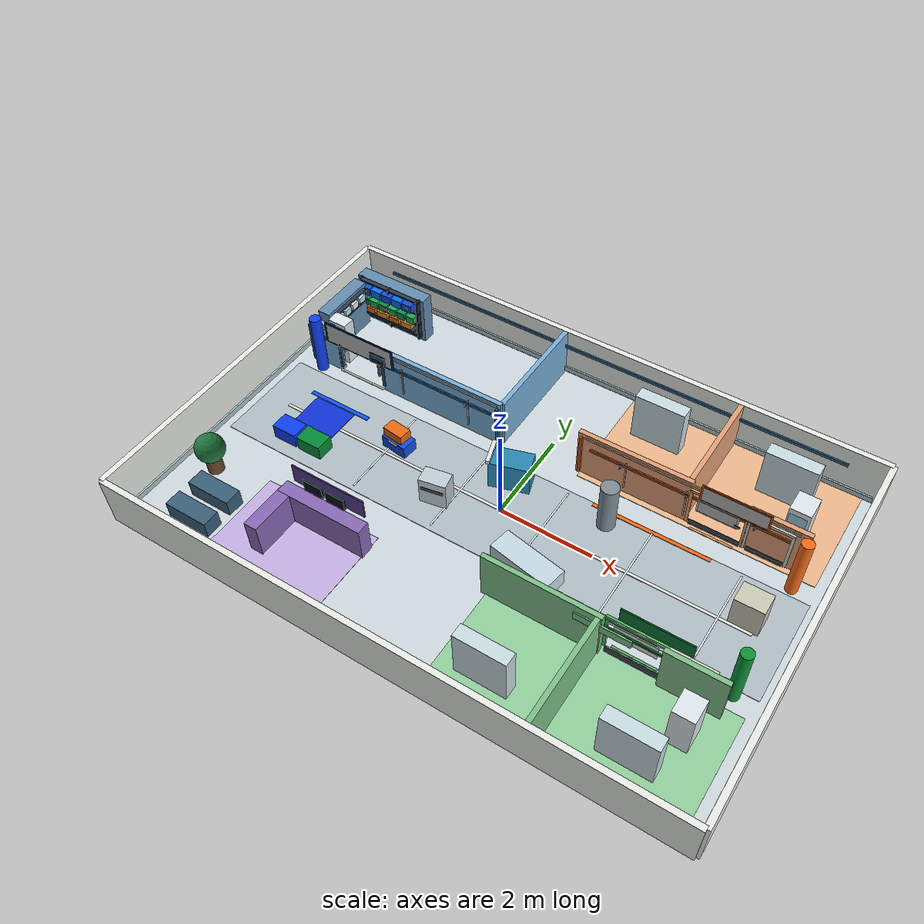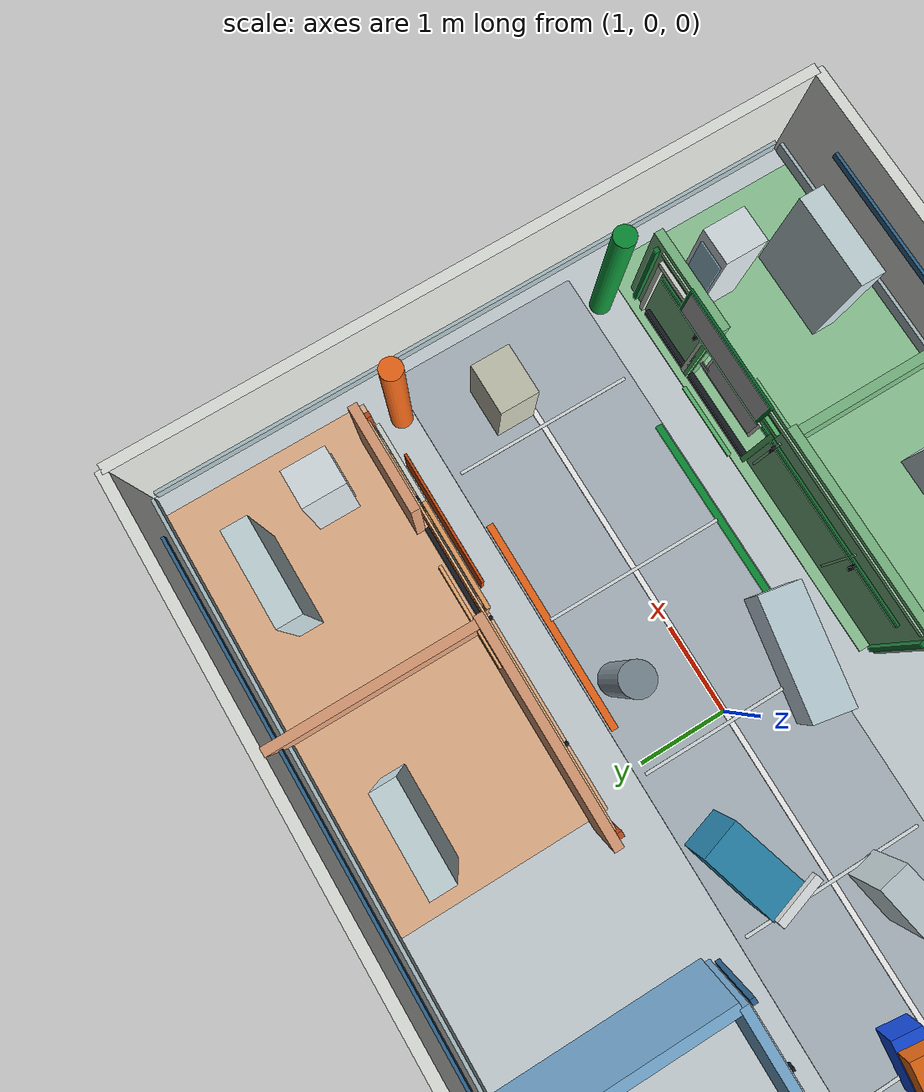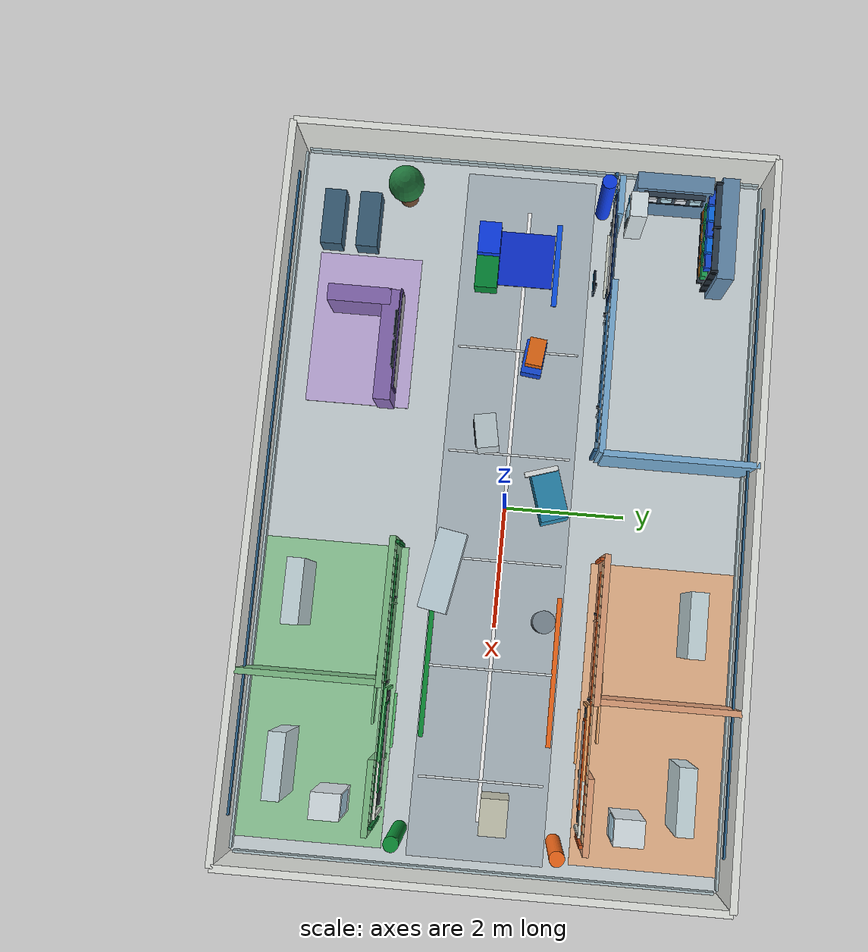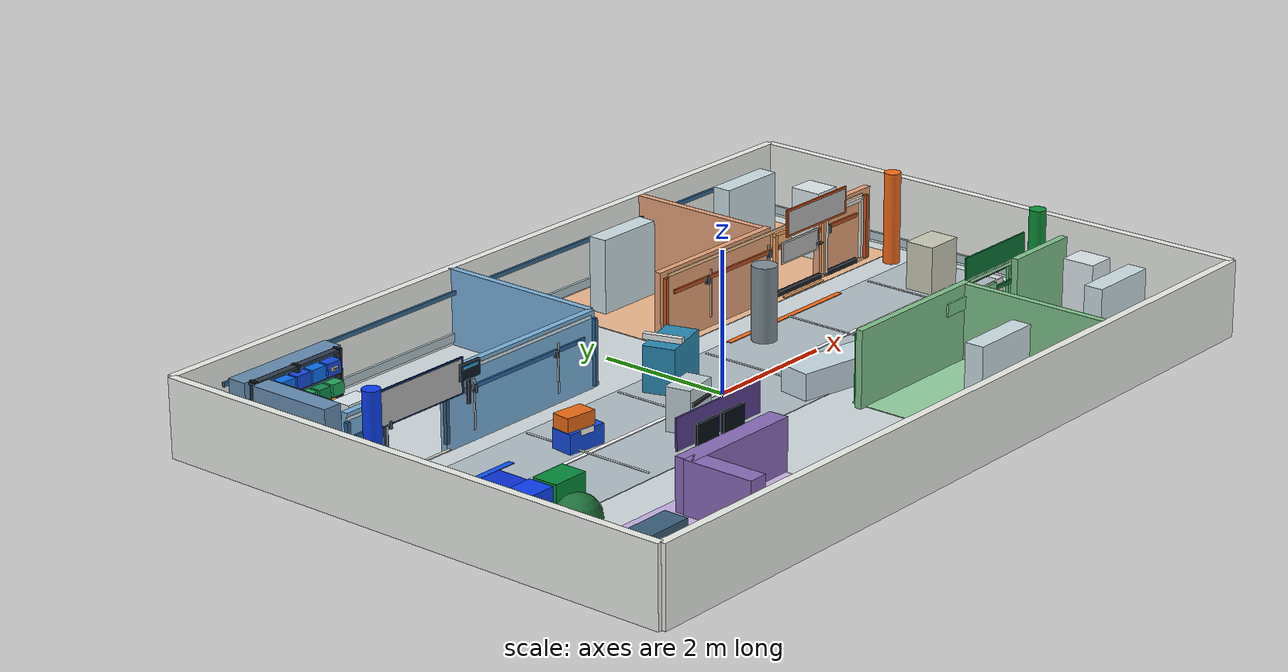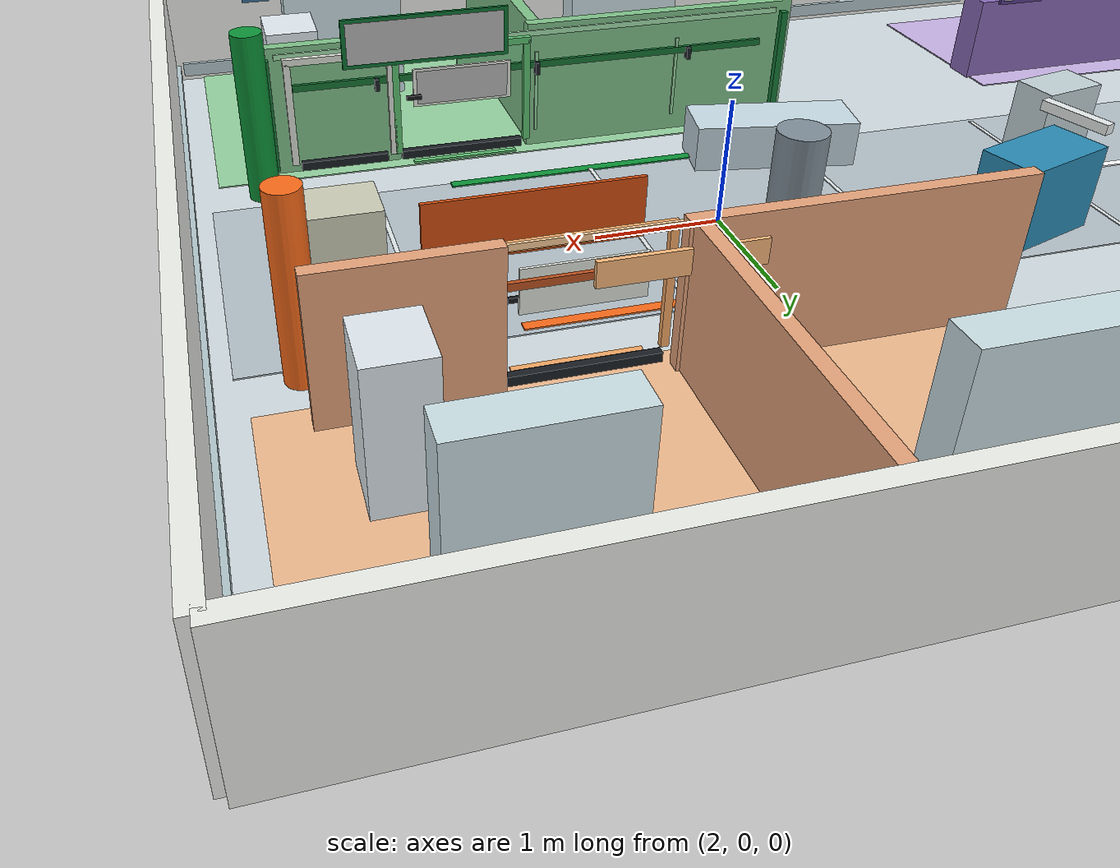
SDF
<?xml version="1.0" ?>
<sdf version="1.6">
  <world name="mobile_delivery">
    <include>
      <uri>model://sun</uri>
    </include>

    <scene>
      <ambient>0.68 0.71 0.72 1</ambient>
      <background>0.80 0.85 0.88 1</background>
      <shadows>true</shadows>
    </scene>

    <gui fullscreen='0'>
      <camera name='user_camera'>
        <pose>-2.9 4.8 3.2 0 0.85 -2.1</pose>
        <view_controller>orbit</view_controller>
        <projection_type>perspective</projection_type>
      </camera>
    </gui>

    <light name="corridor_softbox_1" type="point">
      <pose>-3.0 0 1.35 0 0 0</pose>
      <diffuse>0.95 0.96 0.90 1</diffuse>
      <specular>0.18 0.18 0.16 1</specular>
      <attenuation>
        <range>5.0</range>
        <constant>0.7</constant>
        <linear>0.08</linear>
        <quadratic>0.02</quadratic>
      </attenuation>
    </light>

    <light name="corridor_softbox_2" type="point">
      <pose>0.5 0 1.35 0 0 0</pose>
      <diffuse>0.95 0.96 0.90 1</diffuse>
      <specular>0.18 0.18 0.16 1</specular>
      <attenuation>
        <range>5.0</range>
        <constant>0.7</constant>
        <linear>0.08</linear>
        <quadratic>0.02</quadratic>
      </attenuation>
    </light>

    <light name="corridor_softbox_3" type="point">
      <pose>3.6 0 1.35 0 0 0</pose>
      <diffuse>0.95 0.96 0.90 1</diffuse>
      <specular>0.18 0.18 0.16 1</specular>
      <attenuation>
        <range>5.0</range>
        <constant>0.7</constant>
        <linear>0.08</linear>
        <quadratic>0.02</quadratic>
      </attenuation>
    </light>

    <physics type="ode">
      <real_time_update_rate>1000.0</real_time_update_rate>
      <max_step_size>0.001</max_step_size>
      <real_time_factor>1.0</real_time_factor>
    </physics>

    <model name="floor_plan">
      <static>true</static>
      <link name="base_floor">
        <collision name="collision">
          <geometry><box><size>12.0 8.0 0.02</size></box></geometry>
        </collision>
        <visual name="visual">
          <geometry><box><size>12.0 8.0 0.02</size></box></geometry>
          <material>
            <ambient>0.82 0.86 0.88 1</ambient>
            <diffuse>0.82 0.86 0.88 1</diffuse>
          </material>
        </visual>
      </link>

      <link name="main_corridor_floor">
        <pose>0 0 0.016 0 0 0</pose>
        <visual name="visual">
          <geometry><box><size>11.55 2.22 0.01</size></box></geometry>
          <material>
            <ambient>0.70 0.75 0.78 1</ambient>
            <diffuse>0.70 0.75 0.78 1</diffuse>
          </material>
        </visual>
      </link>

      <link name="wing_a_med_room_floor">
        <pose>3.25 2.75 0.018 0 0 0</pose>
        <visual name="visual">
          <geometry><box><size>4.9 2.45 0.01</size></box></geometry>
          <material>
            <ambient>0.94 0.73 0.56 1</ambient>
            <diffuse>0.94 0.73 0.56 1</diffuse>
          </material>
        </visual>
      </link>

      <link name="wing_b_med_room_floor">
        <pose>3.25 -2.75 0.018 0 0 0</pose>
        <visual name="visual">
          <geometry><box><size>4.9 2.45 0.01</size></box></geometry>
          <material>
            <ambient>0.58 0.82 0.62 1</ambient>
            <diffuse>0.58 0.82 0.62 1</diffuse>
          </material>
        </visual>
      </link>

      <link name="nurse_station_zone_floor">
        <pose>-2.85 -2.65 0.018 0 0 0</pose>
        <visual name="visual">
          <geometry><box><size>2.6 1.75 0.01</size></box></geometry>
          <material>
            <ambient>0.78 0.70 0.90 1</ambient>
            <diffuse>0.78 0.70 0.90 1</diffuse>
          </material>
        </visual>
      </link>
    </model>

    <model name="wayfinding_lines">
      <static>true</static>
      <link name="corridor_center_line">
        <pose>0 0 0.035 0 0 0</pose>
        <visual name="visual">
          <geometry><box><size>10.3 0.06 0.012</size></box></geometry>
          <material><ambient>1.0 1.0 1.0 1</ambient><diffuse>1.0 1.0 1.0 1</diffuse></material>
        </visual>
      </link>
      <link name="blue_pickup_lane">
        <pose>-4.25 0.54 0.04 0 0 0</pose>
        <visual name="visual">
          <geometry><box><size>1.45 0.09 0.012</size></box></geometry>
          <material><ambient>0.05 0.34 0.95 1</ambient><diffuse>0.05 0.34 0.95 1</diffuse></material>
        </visual>
      </link>
      <link name="wing_a_lane">
        <pose>2.65 1.05 0.04 0 0 0</pose>
        <visual name="visual">
          <geometry><box><size>2.45 0.08 0.012</size></box></geometry>
          <material><ambient>0.98 0.42 0.10 1</ambient><diffuse>0.98 0.42 0.10 1</diffuse></material>
        </visual>
      </link>
      <link name="wing_b_lane">
        <pose>2.65 -1.05 0.04 0 0 0</pose>
        <visual name="visual">
          <geometry><box><size>2.45 0.08 0.012</size></box></geometry>
          <material><ambient>0.05 0.58 0.22 1</ambient><diffuse>0.05 0.58 0.22 1</diffuse></material>
        </visual>
      </link>
      <link name="storage_loading_pad">
        <pose>-4.30 0.0 0.045 0 0 0</pose>
        <visual name="visual">
          <geometry><box><size>0.95 0.95 0.018</size></box></geometry>
          <material><ambient>0.05 0.20 0.85 1</ambient><diffuse>0.05 0.20 0.85 1</diffuse></material>
        </visual>
      </link>
    </model>

    <model name="delivery_area_walls">
      <static>true</static>
      <link name="outer_north">
        <pose>0 4 0.55 0 0 0</pose>
        <collision name="collision"><geometry><box><size>12.0 0.12 1.1</size></box></geometry></collision>
        <visual name="visual"><geometry><box><size>12.0 0.12 1.1</size></box></geometry><material><ambient>0.93 0.94 0.92 1</ambient><diffuse>0.93 0.94 0.92 1</diffuse></material></visual>
      </link>
      <link name="outer_south">
        <pose>0 -4 0.55 0 0 0</pose>
        <collision name="collision"><geometry><box><size>12.0 0.12 1.1</size></box></geometry></collision>
        <visual name="visual"><geometry><box><size>12.0 0.12 1.1</size></box></geometry><material><ambient>0.93 0.94 0.92 1</ambient><diffuse>0.93 0.94 0.92 1</diffuse></material></visual>
      </link>
      <link name="outer_west">
        <pose>-6 0 0.55 0 0 0</pose>
        <collision name="collision"><geometry><box><size>0.12 8.0 1.1</size></box></geometry></collision>
        <visual name="visual"><geometry><box><size>0.12 8.0 1.1</size></box></geometry><material><ambient>0.93 0.94 0.92 1</ambient><diffuse>0.93 0.94 0.92 1</diffuse></material></visual>
      </link>
      <link name="outer_east">
        <pose>6 0 0.55 0 0 0</pose>
        <collision name="collision"><geometry><box><size>0.12 8.0 1.1</size></box></geometry></collision>
        <visual name="visual"><geometry><box><size>0.12 8.0 1.1</size></box></geometry><material><ambient>0.93 0.94 0.92 1</ambient><diffuse>0.93 0.94 0.92 1</diffuse></material></visual>
      </link>
      <link name="storage_partition_left">
        <pose>-5.175 1.48 0.55 0 0 0</pose>
        <collision name="collision"><geometry><box><size>0.65 0.10 1.1</size></box></geometry></collision>
        <visual name="visual"><geometry><box><size>0.65 0.10 1.1</size></box></geometry><material><ambient>0.48 0.70 0.86 1</ambient><diffuse>0.48 0.70 0.86 1</diffuse></material></visual>
      </link>
      <link name="storage_partition_right">
        <pose>-2.325 1.48 0.55 0 0 0</pose>
        <collision name="collision"><geometry><box><size>2.85 0.10 1.1</size></box></geometry></collision>
        <visual name="visual"><geometry><box><size>2.85 0.10 1.1</size></box></geometry><material><ambient>0.48 0.70 0.86 1</ambient><diffuse>0.48 0.70 0.86 1</diffuse></material></visual>
      </link>
      <link name="storage_east_wall">
        <pose>-0.90 2.75 0.55 0 0 0</pose>
        <collision name="collision"><geometry><box><size>0.10 2.50 1.1</size></box></geometry></collision>
        <visual name="visual"><geometry><box><size>0.10 2.50 1.1</size></box></geometry><material><ambient>0.48 0.70 0.86 1</ambient><diffuse>0.48 0.70 0.86 1</diffuse></material></visual>
      </link>
      <link name="storage_door_frame">
        <pose>-4.30 1.43 0.56 0 0 0</pose>
        <collision name="left_jamb_collision"><pose>-0.55 0 0 0 0 0</pose><geometry><box><size>0.055 0.055 0.86</size></box></geometry></collision>
        <collision name="right_jamb_collision"><pose>0.55 0 0 0 0 0</pose><geometry><box><size>0.055 0.055 0.86</size></box></geometry></collision>
        <collision name="header_collision"><pose>0 0 0.43 0 0 0</pose><geometry><box><size>1.16 0.055 0.055</size></box></geometry></collision>
        <visual name="left_jamb"><pose>-0.55 0 0 0 0 0</pose><geometry><box><size>0.055 0.055 0.86</size></box></geometry><material><ambient>0.22 0.36 0.48 1</ambient><diffuse>0.22 0.36 0.48 1</diffuse></material></visual>
        <visual name="right_jamb"><pose>0.55 0 0 0 0 0</pose><geometry><box><size>0.055 0.055 0.86</size></box></geometry><material><ambient>0.22 0.36 0.48 1</ambient><diffuse>0.22 0.36 0.48 1</diffuse></material></visual>
        <visual name="header"><pose>0 0 0.43 0 0 0</pose><geometry><box><size>1.16 0.055 0.055</size></box></geometry><material><ambient>0.22 0.36 0.48 1</ambient><diffuse>0.22 0.36 0.48 1</diffuse></material></visual>
      </link>
      <link name="wing_a_med_room_front_wall_left">
        <pose>1.8875 1.7 0.55 0 0 0</pose>
        <collision name="collision"><geometry><box><size>2.375 0.10 1.1</size></box></geometry></collision>
        <visual name="visual"><geometry><box><size>2.375 0.10 1.1</size></box></geometry><material><ambient>0.90 0.64 0.48 1</ambient><diffuse>0.90 0.64 0.48 1</diffuse></material></visual>
      </link>
      <link name="wing_a_med_room_front_wall_right">
        <pose>4.7625 1.7 0.55 0 0 0</pose>
        <collision name="collision"><geometry><box><size>1.175 0.10 1.1</size></box></geometry></collision>
        <visual name="visual"><geometry><box><size>1.175 0.10 1.1</size></box></geometry><material><ambient>0.90 0.64 0.48 1</ambient><diffuse>0.90 0.64 0.48 1</diffuse></material></visual>
      </link>
      <link name="wing_b_med_room_front_wall_left">
        <pose>1.8875 -1.7 0.55 0 0 0</pose>
        <collision name="collision"><geometry><box><size>2.375 0.10 1.1</size></box></geometry></collision>
        <visual name="visual"><geometry><box><size>2.375 0.10 1.1</size></box></geometry><material><ambient>0.50 0.76 0.54 1</ambient><diffuse>0.50 0.76 0.54 1</diffuse></material></visual>
      </link>
      <link name="wing_b_med_room_front_wall_right">
        <pose>4.7625 -1.7 0.55 0 0 0</pose>
        <collision name="collision"><geometry><box><size>1.175 0.10 1.1</size></box></geometry></collision>
        <visual name="visual"><geometry><box><size>1.175 0.10 1.1</size></box></geometry><material><ambient>0.50 0.76 0.54 1</ambient><diffuse>0.50 0.76 0.54 1</diffuse></material></visual>
      </link>
      <link name="wing_a_med_room_partition">
        <pose>3.0 2.85 0.55 0 0 0</pose>
        <collision name="collision"><geometry><box><size>0.10 2.2 1.1</size></box></geometry></collision>
        <visual name="visual"><geometry><box><size>0.10 2.2 1.1</size></box></geometry><material><ambient>0.90 0.64 0.48 1</ambient><diffuse>0.90 0.64 0.48 1</diffuse></material></visual>
      </link>
      <link name="wing_b_med_room_partition">
        <pose>3.0 -2.85 0.55 0 0 0</pose>
        <collision name="collision"><geometry><box><size>0.10 2.2 1.1</size></box></geometry></collision>
        <visual name="visual"><geometry><box><size>0.10 2.2 1.1</size></box></geometry><material><ambient>0.50 0.76 0.54 1</ambient><diffuse>0.50 0.76 0.54 1</diffuse></material></visual>
      </link>
      <link name="wing_a_service_door">
        <pose>4.65 1.63 0.08 0 0 0</pose>
        <visual name="visual"><geometry><box><size>0.72 0.06 0.07</size></box></geometry><material><ambient>0.10 0.12 0.14 1</ambient><diffuse>0.10 0.12 0.14 1</diffuse></material></visual>
      </link>
      <link name="wing_a_service_door_frame">
        <pose>4.65 1.585 0.56 0 0 0</pose>
        <visual name="left_jamb"><pose>-0.41 0 0 0 0 0</pose><geometry><box><size>0.055 0.045 0.88</size></box></geometry><material><ambient>0.86 0.88 0.84 1</ambient><diffuse>0.86 0.88 0.84 1</diffuse></material></visual>
        <visual name="right_jamb"><pose>0.41 0 0 0 0 0</pose><geometry><box><size>0.055 0.045 0.88</size></box></geometry><material><ambient>0.86 0.88 0.84 1</ambient><diffuse>0.86 0.88 0.84 1</diffuse></material></visual>
        <visual name="header"><pose>0 0 0.44 0 0 0</pose><geometry><box><size>0.88 0.045 0.055</size></box></geometry><material><ambient>0.86 0.88 0.84 1</ambient><diffuse>0.86 0.88 0.84 1</diffuse></material></visual>
      </link>
      <link name="wing_a_med_room_door">
        <pose>3.65 1.63 0.08 0 0 0</pose>
        <visual name="visual"><geometry><box><size>1.04 0.06 0.07</size></box></geometry><material><ambient>0.10 0.12 0.14 1</ambient><diffuse>0.10 0.12 0.14 1</diffuse></material></visual>
      </link>
      <link name="wing_a_med_room_door_frame">
        <pose>3.65 1.585 0.56 0 0 0</pose>
        <visual name="left_jamb"><pose>-0.55 0 0 0 0 0</pose><geometry><box><size>0.055 0.045 0.88</size></box></geometry><material><ambient>0.95 0.66 0.40 1</ambient><diffuse>0.95 0.66 0.40 1</diffuse></material></visual>
        <visual name="right_jamb"><pose>0.55 0 0 0 0 0</pose><geometry><box><size>0.055 0.045 0.88</size></box></geometry><material><ambient>0.95 0.66 0.40 1</ambient><diffuse>0.95 0.66 0.40 1</diffuse></material></visual>
        <visual name="header"><pose>0 0 0.44 0 0 0</pose><geometry><box><size>1.16 0.045 0.055</size></box></geometry><material><ambient>0.95 0.66 0.40 1</ambient><diffuse>0.95 0.66 0.40 1</diffuse></material></visual>
        <visual name="handle"><pose>0.41 -0.030 0.05 0 0 0</pose><geometry><box><size>0.12 0.025 0.035</size></box></geometry><material><ambient>0.08 0.09 0.10 1</ambient><diffuse>0.08 0.09 0.10 1</diffuse></material></visual>
      </link>
      <link name="wing_b_med_room_door">
        <pose>3.65 -1.63 0.08 0 0 0</pose>
        <visual name="visual"><geometry><box><size>1.04 0.06 0.07</size></box></geometry><material><ambient>0.10 0.12 0.14 1</ambient><diffuse>0.10 0.12 0.14 1</diffuse></material></visual>
      </link>
      <link name="wing_b_med_room_door_frame">
        <pose>3.65 -1.585 0.56 0 0 0</pose>
        <visual name="left_jamb"><pose>-0.55 0 0 0 0 0</pose><geometry><box><size>0.055 0.045 0.88</size></box></geometry><material><ambient>0.36 0.76 0.44 1</ambient><diffuse>0.36 0.76 0.44 1</diffuse></material></visual>
        <visual name="right_jamb"><pose>0.55 0 0 0 0 0</pose><geometry><box><size>0.055 0.045 0.88</size></box></geometry><material><ambient>0.36 0.76 0.44 1</ambient><diffuse>0.36 0.76 0.44 1</diffuse></material></visual>
        <visual name="header"><pose>0 0 0.44 0 0 0</pose><geometry><box><size>1.16 0.045 0.055</size></box></geometry><material><ambient>0.36 0.76 0.44 1</ambient><diffuse>0.36 0.76 0.44 1</diffuse></material></visual>
        <visual name="handle"><pose>0.41 0.030 0.05 0 0 0</pose><geometry><box><size>0.12 0.025 0.035</size></box></geometry><material><ambient>0.08 0.09 0.10 1</ambient><diffuse>0.08 0.09 0.10 1</diffuse></material></visual>
      </link>
      <link name="wing_b_service_door">
        <pose>4.65 -1.63 0.08 0 0 0</pose>
        <visual name="visual"><geometry><box><size>0.72 0.06 0.07</size></box></geometry><material><ambient>0.10 0.12 0.14 1</ambient><diffuse>0.10 0.12 0.14 1</diffuse></material></visual>
      </link>
      <link name="wing_b_service_door_frame">
        <pose>4.65 -1.585 0.56 0 0 0</pose>
        <visual name="left_jamb"><pose>-0.41 0 0 0 0 0</pose><geometry><box><size>0.055 0.045 0.88</size></box></geometry><material><ambient>0.86 0.88 0.84 1</ambient><diffuse>0.86 0.88 0.84 1</diffuse></material></visual>
        <visual name="right_jamb"><pose>0.41 0 0 0 0 0</pose><geometry><box><size>0.055 0.045 0.88</size></box></geometry><material><ambient>0.86 0.88 0.84 1</ambient><diffuse>0.86 0.88 0.84 1</diffuse></material></visual>
        <visual name="header"><pose>0 0 0.44 0 0 0</pose><geometry><box><size>0.88 0.045 0.055</size></box></geometry><material><ambient>0.86 0.88 0.84 1</ambient><diffuse>0.86 0.88 0.84 1</diffuse></material></visual>
      </link>
    </model>

    <model name="nurse_station">
      <static>true</static>
      <link name="front_counter">
        <pose>-2.45 -2.15 0.38 0 0 0</pose>
        <collision name="collision"><geometry><box><size>1.85 0.28 0.76</size></box></geometry></collision>
        <visual name="visual"><geometry><box><size>1.85 0.28 0.76</size></box></geometry><material><ambient>0.54 0.42 0.72 1</ambient><diffuse>0.54 0.42 0.72 1</diffuse></material></visual>
      </link>
      <link name="side_counter">
        <pose>-3.25 -2.68 0.38 0 0 0</pose>
        <collision name="collision"><geometry><box><size>0.28 1.05 0.76</size></box></geometry></collision>
        <visual name="visual"><geometry><box><size>0.28 1.05 0.76</size></box></geometry><material><ambient>0.54 0.42 0.72 1</ambient><diffuse>0.54 0.42 0.72 1</diffuse></material></visual>
      </link>
      <link name="monitor_1">
        <pose>-2.25 -2.00 0.90 0 0 0</pose>
        <visual name="visual"><geometry><box><size>0.42 0.04 0.28</size></box></geometry><material><ambient>0.02 0.05 0.08 1</ambient><diffuse>0.02 0.05 0.08 1</diffuse></material></visual>
      </link>
      <link name="monitor_2">
        <pose>-2.75 -2.00 0.90 0 0 0</pose>
        <visual name="visual"><geometry><box><size>0.42 0.04 0.28</size></box></geometry><material><ambient>0.02 0.05 0.08 1</ambient><diffuse>0.02 0.05 0.08 1</diffuse></material></visual>
      </link>
    </model>

    <model name="waiting_area">
      <static>true</static>
      <link name="bench_1">
        <pose>-4.65 -2.70 0.28 0 0 0</pose>
        <collision name="collision"><geometry><box><size>0.95 0.36 0.36</size></box></geometry></collision>
        <visual name="visual"><geometry><box><size>0.95 0.36 0.36</size></box></geometry><material><ambient>0.23 0.38 0.48 1</ambient><diffuse>0.23 0.38 0.48 1</diffuse></material></visual>
      </link>
      <link name="bench_2">
        <pose>-4.65 -3.30 0.28 0 0 0</pose>
        <collision name="collision"><geometry><box><size>0.95 0.36 0.36</size></box></geometry></collision>
        <visual name="visual"><geometry><box><size>0.95 0.36 0.36</size></box></geometry><material><ambient>0.23 0.38 0.48 1</ambient><diffuse>0.23 0.38 0.48 1</diffuse></material></visual>
      </link>
      <link name="plant_pot">
        <pose>-5.25 -2.10 0.23 0 0 0</pose>
        <collision name="collision"><geometry><cylinder><radius>0.16</radius><length>0.46</length></cylinder></geometry></collision>
        <visual name="pot"><geometry><cylinder><radius>0.16</radius><length>0.46</length></cylinder></geometry><material><ambient>0.42 0.28 0.18 1</ambient><diffuse>0.42 0.28 0.18 1</diffuse></material></visual>
      </link>
      <link name="plant_leaf">
        <pose>-5.25 -2.10 0.62 0 0 0</pose>
        <visual name="leaf"><geometry><sphere><radius>0.30</radius></sphere></geometry><material><ambient>0.12 0.46 0.23 1</ambient><diffuse>0.12 0.46 0.23 1</diffuse></material></visual>
      </link>
    </model>

    <model name="hospital_obstacles">
      <static>true</static>
      <link name="route_tote_stack">
        <pose>-2.55 0.28 0.24 0 0 -0.12</pose>
        <collision name="collision"><geometry><box><size>0.58 0.34 0.48</size></box></geometry></collision>
        <visual name="bottom_box"><pose>0 0 -0.08 0 0 0</pose><geometry><box><size>0.58 0.34 0.28</size></box></geometry><material><ambient>0.08 0.30 0.88 1</ambient><diffuse>0.08 0.30 0.88 1</diffuse></material></visual>
        <visual name="top_box"><pose>-0.05 0.02 0.16 0 0 0</pose><geometry><box><size>0.46 0.28 0.20</size></box></geometry><material><ambient>0.92 0.42 0.08 1</ambient><diffuse>0.92 0.42 0.08 1</diffuse></material></visual>
        <visual name="label"><pose>0 -0.175 0.04 0 0 0</pose><geometry><box><size>0.22 0.012 0.08</size></box></geometry><material><ambient>0.98 0.98 0.94 1</ambient><diffuse>0.98 0.98 0.94 1</diffuse></material></visual>
      </link>
      <link name="route_supply_cart">
        <pose>-1.18 -0.40 0.32 0 0 0.18</pose>
        <collision name="collision"><geometry><box><size>0.56 0.36 0.64</size></box></geometry></collision>
        <visual name="body"><geometry><box><size>0.56 0.36 0.64</size></box></geometry><material><ambient>0.76 0.82 0.84 1</ambient><diffuse>0.76 0.82 0.84 1</diffuse></material></visual>
        <visual name="tray_line"><pose>0 -0.19 0.11 0 0 0</pose><geometry><box><size>0.46 0.025 0.055</size></box></geometry><material><ambient>0.08 0.10 0.12 1</ambient><diffuse>0.08 0.10 0.12 1</diffuse></material></visual>
      </link>
      <link name="medicine_cart">
        <pose>-0.20 0.72 0.34 0 0 0.30</pose>
        <collision name="collision"><geometry><box><size>0.82 0.46 0.68</size></box></geometry></collision>
        <visual name="body"><geometry><box><size>0.82 0.46 0.68</size></box></geometry><material><ambient>0.16 0.54 0.70 1</ambient><diffuse>0.16 0.54 0.70 1</diffuse></material></visual>
      </link>
      <link name="medicine_cart_handle">
        <pose>-0.55 0.55 0.82 0 0 0.30</pose>
        <visual name="visual"><geometry><box><size>0.08 0.55 0.08</size></box></geometry><material><ambient>0.90 0.92 0.92 1</ambient><diffuse>0.90 0.92 0.92 1</diffuse></material></visual>
      </link>
      <link name="stretcher">
        <pose>1.15 -0.92 0.20 0 0 -0.18</pose>
        <collision name="collision"><geometry><box><size>1.35 0.48 0.40</size></box></geometry></collision>
        <visual name="visual"><geometry><box><size>1.35 0.48 0.40</size></box></geometry><material><ambient>0.78 0.86 0.90 1</ambient><diffuse>0.78 0.86 0.90 1</diffuse></material></visual>
      </link>
      <link name="equipment_stand">
        <pose>1.85 0.78 0.55 0 0 0</pose>
        <collision name="collision"><geometry><cylinder><radius>0.18</radius><length>1.10</length></cylinder></geometry></collision>
        <visual name="visual"><geometry><cylinder><radius>0.18</radius><length>1.10</length></cylinder></geometry><material><ambient>0.50 0.56 0.60 1</ambient><diffuse>0.50 0.56 0.60 1</diffuse></material></visual>
      </link>
      <link name="linen_cart">
        <pose>4.95 0.25 0.36 0 0 0</pose>
        <collision name="collision"><geometry><box><size>0.58 0.44 0.72</size></box></geometry></collision>
        <visual name="visual"><geometry><box><size>0.58 0.44 0.72</size></box></geometry><material><ambient>0.80 0.80 0.72 1</ambient><diffuse>0.80 0.80 0.72 1</diffuse></material></visual>
      </link>
    </model>

    <model name="drug_storage_pickup_props">
      <static>true</static>
      <link name="shelf_back">
        <pose>-4.75 3.25 0.55 0 0 0</pose>
        <collision name="collision"><geometry><box><size>1.7 0.28 1.1</size></box></geometry></collision>
        <visual name="visual"><geometry><box><size>1.7 0.28 1.1</size></box></geometry><material><ambient>0.40 0.56 0.70 1</ambient><diffuse>0.40 0.56 0.70 1</diffuse></material></visual>
      </link>
      <link name="shelf_side">
        <pose>-5.45 2.35 0.55 0 0 0</pose>
        <collision name="collision"><geometry><box><size>0.28 1.25 1.1</size></box></geometry></collision>
        <visual name="visual"><geometry><box><size>0.28 1.25 1.1</size></box></geometry><material><ambient>0.40 0.56 0.70 1</ambient><diffuse>0.40 0.56 0.70 1</diffuse></material></visual>
      </link>
      <link name="loaded_box_blue">
        <pose>-4.55 -0.64 0.18 0 0 0</pose>
        <collision name="collision"><geometry><box><size>0.55 0.38 0.32</size></box></geometry></collision>
        <visual name="visual"><geometry><box><size>0.55 0.38 0.32</size></box></geometry><material><ambient>0.05 0.25 0.95 1</ambient><diffuse>0.05 0.25 0.95 1</diffuse></material></visual>
      </link>
      <link name="loaded_box_green">
        <pose>-3.95 -0.64 0.18 0 0 0</pose>
        <collision name="collision"><geometry><box><size>0.55 0.38 0.32</size></box></geometry></collision>
        <visual name="visual"><geometry><box><size>0.55 0.38 0.32</size></box></geometry><material><ambient>0.02 0.55 0.22 1</ambient><diffuse>0.02 0.55 0.22 1</diffuse></material></visual>
      </link>
    </model>

    <model name="hospital_finish_details">
      <static>true</static>
      <link name="north_baseboard">
        <pose>0 3.92 0.12 0 0 0</pose>
        <visual name="visual"><geometry><box><size>11.75 0.04 0.12</size></box></geometry><material><ambient>0.70 0.78 0.80 1</ambient><diffuse>0.70 0.78 0.80 1</diffuse></material></visual>
      </link>
      <link name="south_baseboard">
        <pose>0 -3.92 0.12 0 0 0</pose>
        <visual name="visual"><geometry><box><size>11.75 0.04 0.12</size></box></geometry><material><ambient>0.70 0.78 0.80 1</ambient><diffuse>0.70 0.78 0.80 1</diffuse></material></visual>
      </link>
      <link name="west_baseboard">
        <pose>-5.92 0 0.12 0 0 0</pose>
        <visual name="visual"><geometry><box><size>0.04 7.75 0.12</size></box></geometry><material><ambient>0.70 0.78 0.80 1</ambient><diffuse>0.70 0.78 0.80 1</diffuse></material></visual>
      </link>
      <link name="east_baseboard">
        <pose>5.92 0 0.12 0 0 0</pose>
        <visual name="visual"><geometry><box><size>0.04 7.75 0.12</size></box></geometry><material><ambient>0.70 0.78 0.80 1</ambient><diffuse>0.70 0.78 0.80 1</diffuse></material></visual>
      </link>
      <link name="north_handrail">
        <pose>0 3.87 0.78 0 0 0</pose>
        <visual name="visual"><geometry><box><size>10.5 0.035 0.06</size></box></geometry><material><ambient>0.20 0.42 0.58 1</ambient><diffuse>0.20 0.42 0.58 1</diffuse></material></visual>
      </link>
      <link name="south_handrail">
        <pose>0 -3.87 0.78 0 0 0</pose>
        <visual name="visual"><geometry><box><size>10.5 0.035 0.06</size></box></geometry><material><ambient>0.20 0.42 0.58 1</ambient><diffuse>0.20 0.42 0.58 1</diffuse></material></visual>
      </link>
      <link name="storage_wall_handrail">
        <pose>-3.25 1.415 0.76 0 0 0</pose>
        <visual name="rail"><geometry><box><size>4.25 0.030 0.055</size></box></geometry><material><ambient>0.16 0.42 0.64 1</ambient><diffuse>0.16 0.42 0.64 1</diffuse></material></visual>
      </link>
      <link name="wing_a_corridor_handrail">
        <pose>3.0 1.635 0.76 0 0 0</pose>
        <visual name="rail"><geometry><box><size>4.05 0.030 0.055</size></box></geometry><material><ambient>0.74 0.32 0.12 1</ambient><diffuse>0.74 0.32 0.12 1</diffuse></material></visual>
      </link>
      <link name="wing_b_corridor_handrail">
        <pose>3.0 -1.635 0.76 0 0 0</pose>
        <visual name="rail"><geometry><box><size>4.05 0.030 0.055</size></box></geometry><material><ambient>0.08 0.45 0.20 1</ambient><diffuse>0.08 0.45 0.20 1</diffuse></material></visual>
      </link>
      <link name="storage_wall_upper_trim">
        <pose>-3.25 1.425 1.03 0 0 0</pose>
        <visual name="trim"><geometry><box><size>4.55 0.022 0.045</size></box></geometry><material><ambient>0.84 0.92 0.96 1</ambient><diffuse>0.84 0.92 0.96 1</diffuse></material></visual>
      </link>
      <link name="wing_a_wall_upper_trim">
        <pose>3.0 1.64 1.03 0 0 0</pose>
        <visual name="trim"><geometry><box><size>4.30 0.022 0.045</size></box></geometry><material><ambient>0.98 0.80 0.60 1</ambient><diffuse>0.98 0.80 0.60 1</diffuse></material></visual>
      </link>
      <link name="wing_b_wall_upper_trim">
        <pose>3.0 -1.64 1.03 0 0 0</pose>
        <visual name="trim"><geometry><box><size>4.30 0.022 0.045</size></box></geometry><material><ambient>0.64 0.88 0.68 1</ambient><diffuse>0.64 0.88 0.68 1</diffuse></material></visual>
      </link>
      <link name="storage_corner_guard_left">
        <pose>-5.55 1.38 0.54 0 0 0</pose>
        <visual name="guard"><geometry><box><size>0.055 0.055 0.95</size></box></geometry><material><ambient>0.18 0.40 0.58 1</ambient><diffuse>0.18 0.40 0.58 1</diffuse></material></visual>
      </link>
      <link name="storage_corner_guard_right">
        <pose>-0.95 1.38 0.54 0 0 0</pose>
        <visual name="guard"><geometry><box><size>0.055 0.055 0.95</size></box></geometry><material><ambient>0.18 0.40 0.58 1</ambient><diffuse>0.18 0.40 0.58 1</diffuse></material></visual>
      </link>
      <link name="wing_a_corner_guard_left">
        <pose>0.78 1.62 0.54 0 0 0</pose>
        <visual name="guard"><geometry><box><size>0.055 0.055 0.95</size></box></geometry><material><ambient>0.78 0.32 0.12 1</ambient><diffuse>0.78 0.32 0.12 1</diffuse></material></visual>
      </link>
      <link name="wing_a_corner_guard_right">
        <pose>5.22 1.62 0.54 0 0 0</pose>
        <visual name="guard"><geometry><box><size>0.055 0.055 0.95</size></box></geometry><material><ambient>0.78 0.32 0.12 1</ambient><diffuse>0.78 0.32 0.12 1</diffuse></material></visual>
      </link>
      <link name="wing_b_corner_guard_left">
        <pose>0.78 -1.62 0.54 0 0 0</pose>
        <visual name="guard"><geometry><box><size>0.055 0.055 0.95</size></box></geometry><material><ambient>0.08 0.48 0.22 1</ambient><diffuse>0.08 0.48 0.22 1</diffuse></material></visual>
      </link>
      <link name="wing_b_corner_guard_right">
        <pose>5.22 -1.62 0.54 0 0 0</pose>
        <visual name="guard"><geometry><box><size>0.055 0.055 0.95</size></box></geometry><material><ambient>0.08 0.48 0.22 1</ambient><diffuse>0.08 0.48 0.22 1</diffuse></material></visual>
      </link>
      <link name="handrail_brackets_storage">
        <pose>-3.25 1.392 0.735 0 0 0</pose>
        <visual name="b1"><pose>-1.55 0 0 0 0 0</pose><geometry><box><size>0.035 0.070 0.10</size></box></geometry><material><ambient>0.10 0.12 0.14 1</ambient><diffuse>0.10 0.12 0.14 1</diffuse></material></visual>
        <visual name="b2"><pose>0 0 0 0 0 0</pose><geometry><box><size>0.035 0.070 0.10</size></box></geometry><material><ambient>0.10 0.12 0.14 1</ambient><diffuse>0.10 0.12 0.14 1</diffuse></material></visual>
        <visual name="b3"><pose>1.55 0 0 0 0 0</pose><geometry><box><size>0.035 0.070 0.10</size></box></geometry><material><ambient>0.10 0.12 0.14 1</ambient><diffuse>0.10 0.12 0.14 1</diffuse></material></visual>
      </link>
      <link name="handrail_brackets_wing_a">
        <pose>3.0 1.612 0.735 0 0 0</pose>
        <visual name="b1"><pose>-1.35 0 0 0 0 0</pose><geometry><box><size>0.035 0.070 0.10</size></box></geometry><material><ambient>0.10 0.12 0.14 1</ambient><diffuse>0.10 0.12 0.14 1</diffuse></material></visual>
        <visual name="b2"><pose>0 0 0 0 0 0</pose><geometry><box><size>0.035 0.070 0.10</size></box></geometry><material><ambient>0.10 0.12 0.14 1</ambient><diffuse>0.10 0.12 0.14 1</diffuse></material></visual>
        <visual name="b3"><pose>1.35 0 0 0 0 0</pose><geometry><box><size>0.035 0.070 0.10</size></box></geometry><material><ambient>0.10 0.12 0.14 1</ambient><diffuse>0.10 0.12 0.14 1</diffuse></material></visual>
      </link>
      <link name="handrail_brackets_wing_b">
        <pose>3.0 -1.612 0.735 0 0 0</pose>
        <visual name="b1"><pose>-1.35 0 0 0 0 0</pose><geometry><box><size>0.035 0.070 0.10</size></box></geometry><material><ambient>0.10 0.12 0.14 1</ambient><diffuse>0.10 0.12 0.14 1</diffuse></material></visual>
        <visual name="b2"><pose>0 0 0 0 0 0</pose><geometry><box><size>0.035 0.070 0.10</size></box></geometry><material><ambient>0.10 0.12 0.14 1</ambient><diffuse>0.10 0.12 0.14 1</diffuse></material></visual>
        <visual name="b3"><pose>1.35 0 0 0 0 0</pose><geometry><box><size>0.035 0.070 0.10</size></box></geometry><material><ambient>0.10 0.12 0.14 1</ambient><diffuse>0.10 0.12 0.14 1</diffuse></material></visual>
      </link>
      <link name="corridor_floor_tile_a">
        <pose>-2.7 0 0.048 0 0 0</pose>
        <visual name="visual"><geometry><box><size>0.035 2.05 0.006</size></box></geometry><material><ambient>0.88 0.91 0.92 1</ambient><diffuse>0.88 0.91 0.92 1</diffuse></material></visual>
      </link>
      <link name="corridor_floor_tile_b">
        <pose>-0.9 0 0.048 0 0 0</pose>
        <visual name="visual"><geometry><box><size>0.035 2.05 0.006</size></box></geometry><material><ambient>0.88 0.91 0.92 1</ambient><diffuse>0.88 0.91 0.92 1</diffuse></material></visual>
      </link>
      <link name="corridor_floor_tile_c">
        <pose>0.9 0 0.048 0 0 0</pose>
        <visual name="visual"><geometry><box><size>0.035 2.05 0.006</size></box></geometry><material><ambient>0.88 0.91 0.92 1</ambient><diffuse>0.88 0.91 0.92 1</diffuse></material></visual>
      </link>
      <link name="corridor_floor_tile_d">
        <pose>2.7 0 0.048 0 0 0</pose>
        <visual name="visual"><geometry><box><size>0.035 2.05 0.006</size></box></geometry><material><ambient>0.88 0.91 0.92 1</ambient><diffuse>0.88 0.91 0.92 1</diffuse></material></visual>
      </link>
      <link name="corridor_floor_tile_e">
        <pose>4.5 0 0.048 0 0 0</pose>
        <visual name="visual"><geometry><box><size>0.035 2.05 0.006</size></box></geometry><material><ambient>0.88 0.91 0.92 1</ambient><diffuse>0.88 0.91 0.92 1</diffuse></material></visual>
      </link>
      <link name="storage_wall_panel_seams">
        <pose>-3.25 1.405 0.52 0 0 0</pose>
        <visual name="seam_1"><pose>-1.60 0 0 0 0 0</pose><geometry><box><size>0.025 0.018 0.70</size></box></geometry><material><ambient>0.78 0.86 0.90 1</ambient><diffuse>0.78 0.86 0.90 1</diffuse></material></visual>
        <visual name="seam_2"><pose>0 0 0 0 0 0</pose><geometry><box><size>0.025 0.018 0.70</size></box></geometry><material><ambient>0.78 0.86 0.90 1</ambient><diffuse>0.78 0.86 0.90 1</diffuse></material></visual>
        <visual name="seam_3"><pose>1.60 0 0 0 0 0</pose><geometry><box><size>0.025 0.018 0.70</size></box></geometry><material><ambient>0.78 0.86 0.90 1</ambient><diffuse>0.78 0.86 0.90 1</diffuse></material></visual>
      </link>
      <link name="wing_a_wall_panel_seams">
        <pose>3.0 1.63 0.52 0 0 0</pose>
        <visual name="seam_1"><pose>-1.25 0 0 0 0 0</pose><geometry><box><size>0.025 0.018 0.70</size></box></geometry><material><ambient>0.98 0.76 0.58 1</ambient><diffuse>0.98 0.76 0.58 1</diffuse></material></visual>
        <visual name="seam_2"><pose>0 0 0 0 0 0</pose><geometry><box><size>0.025 0.018 0.70</size></box></geometry><material><ambient>0.98 0.76 0.58 1</ambient><diffuse>0.98 0.76 0.58 1</diffuse></material></visual>
        <visual name="seam_3"><pose>1.25 0 0 0 0 0</pose><geometry><box><size>0.025 0.018 0.70</size></box></geometry><material><ambient>0.98 0.76 0.58 1</ambient><diffuse>0.98 0.76 0.58 1</diffuse></material></visual>
      </link>
      <link name="wing_b_wall_panel_seams">
        <pose>3.0 -1.63 0.52 0 0 0</pose>
        <visual name="seam_1"><pose>-1.25 0 0 0 0 0</pose><geometry><box><size>0.025 0.018 0.70</size></box></geometry><material><ambient>0.58 0.84 0.62 1</ambient><diffuse>0.58 0.84 0.62 1</diffuse></material></visual>
        <visual name="seam_2"><pose>0 0 0 0 0 0</pose><geometry><box><size>0.025 0.018 0.70</size></box></geometry><material><ambient>0.58 0.84 0.62 1</ambient><diffuse>0.58 0.84 0.62 1</diffuse></material></visual>
        <visual name="seam_3"><pose>1.25 0 0 0 0 0</pose><geometry><box><size>0.025 0.018 0.70</size></box></geometry><material><ambient>0.58 0.84 0.62 1</ambient><diffuse>0.58 0.84 0.62 1</diffuse></material></visual>
      </link>
      <link name="door_thresholds">
        <pose>0 0 0.058 0 0 0</pose>
        <visual name="storage_threshold"><pose>-4.30 1.39 0 0 0 0</pose><geometry><box><size>1.12 0.045 0.014</size></box></geometry><material><ambient>0.82 0.84 0.80 1</ambient><diffuse>0.82 0.84 0.80 1</diffuse></material></visual>
        <visual name="wing_a_threshold"><pose>3.65 1.51 0 0 0 0</pose><geometry><box><size>0.88 0.045 0.014</size></box></geometry><material><ambient>0.95 0.66 0.40 1</ambient><diffuse>0.95 0.66 0.40 1</diffuse></material></visual>
        <visual name="wing_b_threshold"><pose>3.65 -1.51 0 0 0 0</pose><geometry><box><size>0.88 0.045 0.014</size></box></geometry><material><ambient>0.36 0.76 0.44 1</ambient><diffuse>0.36 0.76 0.44 1</diffuse></material></visual>
      </link>
    </model>

    <model name="medication_room_details">
      <static>true</static>
      <link name="wing_a_medicine_cabinet_1">
        <pose>4.40 3.18 0.58 0 0 0</pose>
        <collision name="collision"><geometry><box><size>1.05 0.28 1.08</size></box></geometry></collision>
        <visual name="visual"><geometry><box><size>1.05 0.28 1.08</size></box></geometry><material><ambient>0.80 0.88 0.90 1</ambient><diffuse>0.80 0.88 0.90 1</diffuse></material></visual>
      </link>
      <link name="wing_a_medicine_cabinet_2">
        <pose>1.70 3.18 0.58 0 0 0</pose>
        <collision name="collision"><geometry><box><size>1.05 0.28 1.08</size></box></geometry></collision>
        <visual name="visual"><geometry><box><size>1.05 0.28 1.08</size></box></geometry><material><ambient>0.80 0.88 0.90 1</ambient><diffuse>0.80 0.88 0.90 1</diffuse></material></visual>
      </link>
      <link name="wing_a_cold_storage">
        <pose>4.95 2.35 0.54 0 0 0</pose>
        <collision name="collision"><geometry><box><size>0.42 0.48 1.00</size></box></geometry></collision>
        <visual name="body"><geometry><box><size>0.42 0.48 1.00</size></box></geometry><material><ambient>0.88 0.92 0.94 1</ambient><diffuse>0.88 0.92 0.94 1</diffuse></material></visual>
        <visual name="glass"><pose>-0.012 -0.245 0.10 0 0 0</pose><geometry><box><size>0.34 0.018 0.55</size></box></geometry><material><ambient>0.62 0.84 0.95 0.65</ambient><diffuse>0.62 0.84 0.95 0.65</diffuse></material></visual>
      </link>
      <link name="wing_b_medicine_cabinet_1">
        <pose>1.70 -3.18 0.58 0 0 0</pose>
        <collision name="collision"><geometry><box><size>1.05 0.28 1.08</size></box></geometry></collision>
        <visual name="visual"><geometry><box><size>1.05 0.28 1.08</size></box></geometry><material><ambient>0.80 0.88 0.90 1</ambient><diffuse>0.80 0.88 0.90 1</diffuse></material></visual>
      </link>
      <link name="wing_b_medicine_cabinet_2">
        <pose>4.40 -3.18 0.58 0 0 0</pose>
        <collision name="collision"><geometry><box><size>1.05 0.28 1.08</size></box></geometry></collision>
        <visual name="visual"><geometry><box><size>1.05 0.28 1.08</size></box></geometry><material><ambient>0.80 0.88 0.90 1</ambient><diffuse>0.80 0.88 0.90 1</diffuse></material></visual>
      </link>
      <link name="wing_b_cold_storage">
        <pose>4.95 -2.35 0.54 0 0 0</pose>
        <collision name="collision"><geometry><box><size>0.42 0.48 1.00</size></box></geometry></collision>
        <visual name="body"><geometry><box><size>0.42 0.48 1.00</size></box></geometry><material><ambient>0.88 0.92 0.94 1</ambient><diffuse>0.88 0.92 0.94 1</diffuse></material></visual>
        <visual name="glass"><pose>-0.012 0.245 0.10 0 0 0</pose><geometry><box><size>0.34 0.018 0.55</size></box></geometry><material><ambient>0.62 0.84 0.95 0.65</ambient><diffuse>0.62 0.84 0.95 0.65</diffuse></material></visual>
      </link>
      <link name="wing_a_wall_label_bar">
        <pose>3.10 1.76 0.84 0 0 0</pose>
        <visual name="visual"><geometry><box><size>1.10 0.035 0.18</size></box></geometry><material><ambient>0.98 0.72 0.48 1</ambient><diffuse>0.98 0.72 0.48 1</diffuse></material></visual>
      </link>
      <link name="wing_b_wall_label_bar">
        <pose>3.10 -1.76 0.84 0 0 0</pose>
        <visual name="visual"><geometry><box><size>1.10 0.035 0.18</size></box></geometry><material><ambient>0.48 0.78 0.54 1</ambient><diffuse>0.48 0.78 0.54 1</diffuse></material></visual>
      </link>
    </model>

    <model name="drug_storage_shelf_details">
      <static>true</static>
      <link name="back_shelf_frame">
        <pose>-4.75 3.06 0.60 0 0 0</pose>
        <visual name="shelf_floor"><pose>0 0 0.48 0 0 0</pose><geometry><box><size>1.55 0.10 0.035</size></box></geometry><material><ambient>0.18 0.24 0.30 1</ambient><diffuse>0.18 0.24 0.30 1</diffuse></material></visual>
        <visual name="shelf_high"><pose>0 0 0.18 0 0 0</pose><geometry><box><size>1.55 0.10 0.035</size></box></geometry><material><ambient>0.18 0.24 0.30 1</ambient><diffuse>0.18 0.24 0.30 1</diffuse></material></visual>
        <visual name="shelf_mid"><pose>0 0 -0.12 0 0 0</pose><geometry><box><size>1.55 0.10 0.035</size></box></geometry><material><ambient>0.18 0.24 0.30 1</ambient><diffuse>0.18 0.24 0.30 1</diffuse></material></visual>
        <visual name="shelf_low"><pose>0 0 -0.42 0 0 0</pose><geometry><box><size>1.55 0.10 0.035</size></box></geometry><material><ambient>0.18 0.24 0.30 1</ambient><diffuse>0.18 0.24 0.30 1</diffuse></material></visual>
        <visual name="upright_left"><pose>-0.74 0 0 0 0 0</pose><geometry><box><size>0.045 0.12 1.02</size></box></geometry><material><ambient>0.12 0.16 0.20 1</ambient><diffuse>0.12 0.16 0.20 1</diffuse></material></visual>
        <visual name="upright_mid"><pose>0 0 0 0 0 0</pose><geometry><box><size>0.040 0.12 1.02</size></box></geometry><material><ambient>0.12 0.16 0.20 1</ambient><diffuse>0.12 0.16 0.20 1</diffuse></material></visual>
        <visual name="upright_right"><pose>0.74 0 0 0 0 0</pose><geometry><box><size>0.045 0.12 1.02</size></box></geometry><material><ambient>0.12 0.16 0.20 1</ambient><diffuse>0.12 0.16 0.20 1</diffuse></material></visual>
      </link>
      <link name="shelf_back_blue_bins">
        <pose>-4.75 3.00 0.92 0 0 0</pose>
        <visual name="box_1"><pose>-0.54 0 0 0 0 0</pose><geometry><box><size>0.24 0.16 0.18</size></box></geometry><material><ambient>0.08 0.30 0.88 1</ambient><diffuse>0.08 0.30 0.88 1</diffuse></material></visual>
        <visual name="box_2"><pose>-0.27 0 0 0 0 0</pose><geometry><box><size>0.24 0.16 0.18</size></box></geometry><material><ambient>0.04 0.44 0.95 1</ambient><diffuse>0.04 0.44 0.95 1</diffuse></material></visual>
        <visual name="box_3"><pose>0 0 0 0 0 0</pose><geometry><box><size>0.24 0.16 0.18</size></box></geometry><material><ambient>0.08 0.30 0.88 1</ambient><diffuse>0.08 0.30 0.88 1</diffuse></material></visual>
        <visual name="box_4"><pose>0.27 0 0 0 0 0</pose><geometry><box><size>0.24 0.16 0.18</size></box></geometry><material><ambient>0.04 0.44 0.95 1</ambient><diffuse>0.04 0.44 0.95 1</diffuse></material></visual>
        <visual name="box_5"><pose>0.54 0 0 0 0 0</pose><geometry><box><size>0.24 0.16 0.18</size></box></geometry><material><ambient>0.08 0.30 0.88 1</ambient><diffuse>0.08 0.30 0.88 1</diffuse></material></visual>
        <visual name="barcode_1"><pose>-0.54 -0.083 0 0 0 0</pose><geometry><box><size>0.13 0.010 0.055</size></box></geometry><material><ambient>0.98 0.98 0.94 1</ambient><diffuse>0.98 0.98 0.94 1</diffuse></material></visual>
        <visual name="barcode_1_bar"><pose>-0.54 -0.089 0 0 0 0</pose><geometry><box><size>0.075 0.008 0.018</size></box></geometry><material><ambient>0.05 0.05 0.05 1</ambient><diffuse>0.05 0.05 0.05 1</diffuse></material></visual>
        <visual name="barcode_5"><pose>0.54 -0.083 0 0 0 0</pose><geometry><box><size>0.13 0.010 0.055</size></box></geometry><material><ambient>0.98 0.98 0.94 1</ambient><diffuse>0.98 0.98 0.94 1</diffuse></material></visual>
        <visual name="barcode_5_bar"><pose>0.54 -0.089 0 0 0 0</pose><geometry><box><size>0.075 0.008 0.018</size></box></geometry><material><ambient>0.05 0.05 0.05 1</ambient><diffuse>0.05 0.05 0.05 1</diffuse></material></visual>
      </link>
      <link name="shelf_back_green_bins">
        <pose>-4.75 3.00 0.62 0 0 0</pose>
        <visual name="box_1"><pose>-0.60 0 0 0 0 0</pose><geometry><box><size>0.20 0.16 0.17</size></box></geometry><material><ambient>0.06 0.55 0.30 1</ambient><diffuse>0.06 0.55 0.30 1</diffuse></material></visual>
        <visual name="box_2"><pose>-0.36 0 0 0 0 0</pose><geometry><box><size>0.20 0.16 0.17</size></box></geometry><material><ambient>0.12 0.66 0.34 1</ambient><diffuse>0.12 0.66 0.34 1</diffuse></material></visual>
        <visual name="box_3"><pose>-0.12 0 0 0 0 0</pose><geometry><box><size>0.20 0.16 0.17</size></box></geometry><material><ambient>0.06 0.55 0.30 1</ambient><diffuse>0.06 0.55 0.30 1</diffuse></material></visual>
        <visual name="box_4"><pose>0.12 0 0 0 0 0</pose><geometry><box><size>0.20 0.16 0.17</size></box></geometry><material><ambient>0.12 0.66 0.34 1</ambient><diffuse>0.12 0.66 0.34 1</diffuse></material></visual>
        <visual name="box_5"><pose>0.36 0 0 0 0 0</pose><geometry><box><size>0.20 0.16 0.17</size></box></geometry><material><ambient>0.06 0.55 0.30 1</ambient><diffuse>0.06 0.55 0.30 1</diffuse></material></visual>
        <visual name="box_6"><pose>0.60 0 0 0 0 0</pose><geometry><box><size>0.20 0.16 0.17</size></box></geometry><material><ambient>0.12 0.66 0.34 1</ambient><diffuse>0.12 0.66 0.34 1</diffuse></material></visual>
        <visual name="barcode_center"><pose>0 -0.083 0 0 0 0</pose><geometry><box><size>0.17 0.010 0.060</size></box></geometry><material><ambient>0.98 0.98 0.94 1</ambient><diffuse>0.98 0.98 0.94 1</diffuse></material></visual>
        <visual name="barcode_center_bar_1"><pose>-0.035 -0.089 0 0 0 0</pose><geometry><box><size>0.018 0.008 0.045</size></box></geometry><material><ambient>0.05 0.05 0.05 1</ambient><diffuse>0.05 0.05 0.05 1</diffuse></material></visual>
        <visual name="barcode_center_bar_2"><pose>0.020 -0.089 0 0 0 0</pose><geometry><box><size>0.028 0.008 0.045</size></box></geometry><material><ambient>0.05 0.05 0.05 1</ambient><diffuse>0.05 0.05 0.05 1</diffuse></material></visual>
      </link>
      <link name="shelf_back_orange_bins">
        <pose>-4.75 3.00 0.32 0 0 0</pose>
        <visual name="tray"><geometry><box><size>1.38 0.18 0.055</size></box></geometry><material><ambient>0.18 0.22 0.26 1</ambient><diffuse>0.18 0.22 0.26 1</diffuse></material></visual>
        <visual name="box_1"><pose>-0.48 0 0.08 0 0 0</pose><geometry><box><size>0.26 0.15 0.16</size></box></geometry><material><ambient>0.92 0.42 0.08 1</ambient><diffuse>0.92 0.42 0.08 1</diffuse></material></visual>
        <visual name="box_2"><pose>-0.16 0 0.08 0 0 0</pose><geometry><box><size>0.26 0.15 0.16</size></box></geometry><material><ambient>0.95 0.58 0.12 1</ambient><diffuse>0.95 0.58 0.12 1</diffuse></material></visual>
        <visual name="box_3"><pose>0.16 0 0.08 0 0 0</pose><geometry><box><size>0.26 0.15 0.16</size></box></geometry><material><ambient>0.92 0.42 0.08 1</ambient><diffuse>0.92 0.42 0.08 1</diffuse></material></visual>
        <visual name="box_4"><pose>0.48 0 0.08 0 0 0</pose><geometry><box><size>0.26 0.15 0.16</size></box></geometry><material><ambient>0.95 0.58 0.12 1</ambient><diffuse>0.95 0.58 0.12 1</diffuse></material></visual>
      </link>
      <link name="side_shelf_vials">
        <pose>-5.25 2.35 0.78 0 0 0</pose>
        <visual name="rail_top"><pose>0 0 0.25 0 0 0</pose><geometry><box><size>0.09 1.00 0.035</size></box></geometry><material><ambient>0.18 0.24 0.30 1</ambient><diffuse>0.18 0.24 0.30 1</diffuse></material></visual>
        <visual name="rail_mid"><pose>0 0 0 0 0 0</pose><geometry><box><size>0.09 1.00 0.035</size></box></geometry><material><ambient>0.18 0.24 0.30 1</ambient><diffuse>0.18 0.24 0.30 1</diffuse></material></visual>
        <visual name="vial_row_1"><pose>0 -0.36 0.08 0 0 0</pose><geometry><box><size>0.075 0.18 0.16</size></box></geometry><material><ambient>0.92 0.95 0.98 1</ambient><diffuse>0.92 0.95 0.98 1</diffuse></material></visual>
        <visual name="vial_row_2"><pose>0 -0.12 0.08 0 0 0</pose><geometry><box><size>0.075 0.18 0.16</size></box></geometry><material><ambient>0.74 0.90 0.96 1</ambient><diffuse>0.74 0.90 0.96 1</diffuse></material></visual>
        <visual name="vial_row_3"><pose>0 0.12 0.08 0 0 0</pose><geometry><box><size>0.075 0.18 0.16</size></box></geometry><material><ambient>0.92 0.95 0.98 1</ambient><diffuse>0.92 0.95 0.98 1</diffuse></material></visual>
        <visual name="vial_row_4"><pose>0 0.36 0.08 0 0 0</pose><geometry><box><size>0.075 0.18 0.16</size></box></geometry><material><ambient>0.74 0.90 0.96 1</ambient><diffuse>0.74 0.90 0.96 1</diffuse></material></visual>
      </link>
      <link name="storage_cold_cabinet">
        <pose>-5.05 1.78 0.56 0 0 0</pose>
        <visual name="body"><geometry><box><size>0.42 0.28 1.02</size></box></geometry><material><ambient>0.88 0.93 0.95 1</ambient><diffuse>0.88 0.93 0.95 1</diffuse></material></visual>
        <visual name="glass"><pose>0 -0.148 0.08 0 0 0</pose><geometry><box><size>0.30 0.018 0.58</size></box></geometry><material><ambient>0.56 0.82 0.96 0.68</ambient><diffuse>0.56 0.82 0.96 0.68</diffuse></material></visual>
        <visual name="handle"><pose>0.18 -0.162 0.08 0 0 0</pose><geometry><box><size>0.025 0.018 0.42</size></box></geometry><material><ambient>0.12 0.16 0.18 1</ambient><diffuse>0.12 0.16 0.18 1</diffuse></material></visual>
        <visual name="temperature_display"><pose>-0.10 -0.162 0.42 0 0 0</pose><geometry><box><size>0.12 0.014 0.07</size></box></geometry><material><ambient>0.10 0.55 0.82 1</ambient><diffuse>0.10 0.55 0.82 1</diffuse></material></visual>
      </link>
      <link name="outbound_monitor">
        <pose>-3.62 1.16 0.92 0 0 0</pose>
        <visual name="stand"><pose>0 0 0 0 0 0</pose><geometry><box><size>0.045 0.045 0.42</size></box></geometry><material><ambient>0.08 0.10 0.12 1</ambient><diffuse>0.08 0.10 0.12 1</diffuse></material></visual>
        <visual name="screen"><pose>0 -0.025 0.25 0 0 0</pose><geometry><box><size>0.36 0.035 0.22</size></box></geometry><material><ambient>0.04 0.10 0.16 1</ambient><diffuse>0.04 0.10 0.16 1</diffuse></material></visual>
        <visual name="screen_bar"><pose>0 -0.045 0.31 0 0 0</pose><geometry><box><size>0.28 0.010 0.035</size></box></geometry><material><ambient>0.12 0.70 0.95 1</ambient><diffuse>0.12 0.70 0.95 1</diffuse></material></visual>
      </link>
    </model>

    <model name="hospital_signage">
      <static>true</static>
      <link name="storage_wall_sign_panel">
        <pose>-4.30 1.405 0.98 0 0 0</pose>
        <visual name="backing"><geometry><box><size>1.70 0.025 0.50</size></box></geometry><material><ambient>0.05 0.18 0.42 1</ambient><diffuse>0.05 0.18 0.42 1</diffuse></material></visual>
        <visual name="panel"><pose>0 -0.016 0 1.5708 0 0</pose><geometry><mesh><uri>file://materials/meshes/sign_plane.dae</uri><scale>1.62 0.46 1</scale></mesh></geometry><material><script><uri>file://materials/scripts/mobile_simulation_signs.material</uri><uri>file://materials/textures</uri><name>MobileSimulation/SignStorage</name></script></material></visual>
      </link>
      <link name="nurse_station_wall_sign_panel">
        <pose>-2.45 -1.93 0.98 0 0 0</pose>
        <visual name="backing"><geometry><box><size>1.62 0.025 0.44</size></box></geometry><material><ambient>0.34 0.24 0.55 1</ambient><diffuse>0.34 0.24 0.55 1</diffuse></material></visual>
        <visual name="panel"><pose>0 0.016 0 1.5708 0 3.1416</pose><geometry><mesh><uri>file://materials/meshes/sign_plane.dae</uri><scale>1.55 0.38 1</scale></mesh></geometry><material><script><uri>file://materials/scripts/mobile_simulation_signs.material</uri><uri>file://materials/textures</uri><name>MobileSimulation/SignNurseStation</name></script></material></visual>
      </link>
      <link name="wing_a_overhead_sign_panel">
        <pose>3.95 1.53 1.12 0 0 0</pose>
        <visual name="backing"><geometry><box><size>1.35 0.025 0.40</size></box></geometry><material><ambient>0.82 0.30 0.06 1</ambient><diffuse>0.82 0.30 0.06 1</diffuse></material></visual>
        <visual name="panel"><pose>0 -0.016 0 1.5708 0 0</pose><geometry><mesh><uri>file://materials/meshes/sign_plane.dae</uri><scale>1.28 0.34 1</scale></mesh></geometry><material><script><uri>file://materials/scripts/mobile_simulation_signs.material</uri><uri>file://materials/textures</uri><name>MobileSimulation/SignWingA</name></script></material></visual>
      </link>
      <link name="wing_b_overhead_sign_panel">
        <pose>3.95 -1.53 1.12 0 0 0</pose>
        <visual name="backing"><geometry><box><size>1.35 0.025 0.40</size></box></geometry><material><ambient>0.04 0.45 0.20 1</ambient><diffuse>0.04 0.45 0.20 1</diffuse></material></visual>
        <visual name="panel"><pose>0 0.016 0 1.5708 0 3.1416</pose><geometry><mesh><uri>file://materials/meshes/sign_plane.dae</uri><scale>1.28 0.34 1</scale></mesh></geometry><material><script><uri>file://materials/scripts/mobile_simulation_signs.material</uri><uri>file://materials/textures</uri><name>MobileSimulation/SignWingB</name></script></material></visual>
      </link>

      <link name="wing_a_med_room_plate">
        <pose>3.65 1.585 0.68 0 0 0</pose>
        <visual name="backing"><geometry><box><size>0.82 0.020 0.32</size></box></geometry><material><ambient>0.88 0.90 0.86 1</ambient><diffuse>0.88 0.90 0.86 1</diffuse></material></visual>
        <visual name="plate"><pose>0 -0.013 0 1.5708 0 0</pose><geometry><mesh><uri>file://materials/meshes/sign_plane.dae</uri><scale>0.76 0.28 1</scale></mesh></geometry><material><script><uri>file://materials/scripts/mobile_simulation_signs.material</uri><uri>file://materials/textures</uri><name>MobileSimulation/MedRoomA</name></script></material></visual>
      </link>
      <link name="wing_b_med_room_plate">
        <pose>3.65 -1.585 0.68 0 0 0</pose>
        <visual name="backing"><geometry><box><size>0.82 0.020 0.32</size></box></geometry><material><ambient>0.88 0.90 0.86 1</ambient><diffuse>0.88 0.90 0.86 1</diffuse></material></visual>
        <visual name="plate"><pose>0 0.013 0 1.5708 0 3.1416</pose><geometry><mesh><uri>file://materials/meshes/sign_plane.dae</uri><scale>0.76 0.28 1</scale></mesh></geometry><material><script><uri>file://materials/scripts/mobile_simulation_signs.material</uri><uri>file://materials/textures</uri><name>MobileSimulation/MedRoomB</name></script></material></visual>
      </link>

    </model>

    <model name="visual_beacons">
      <static>true</static>
      <link name="storage_beacon">
        <pose>-5.25 1.25 0.72 0 0 0</pose>
        <visual name="visual"><geometry><cylinder><radius>0.12</radius><length>1.35</length></cylinder></geometry><material><ambient>0.05 0.25 0.95 1</ambient><diffuse>0.05 0.25 0.95 1</diffuse></material></visual>
      </link>
      <link name="wing_a_beacon">
        <pose>5.35 1.25 0.72 0 0 0</pose>
        <visual name="visual"><geometry><cylinder><radius>0.12</radius><length>1.35</length></cylinder></geometry><material><ambient>0.98 0.42 0.10 1</ambient><diffuse>0.98 0.42 0.10 1</diffuse></material></visual>
      </link>
      <link name="wing_b_beacon">
        <pose>5.35 -1.25 0.72 0 0 0</pose>
        <visual name="visual"><geometry><cylinder><radius>0.12</radius><length>1.35</length></cylinder></geometry><material><ambient>0.05 0.58 0.22 1</ambient><diffuse>0.05 0.58 0.22 1</diffuse></material></visual>
      </link>
    </model>
  </world>
</sdf>
